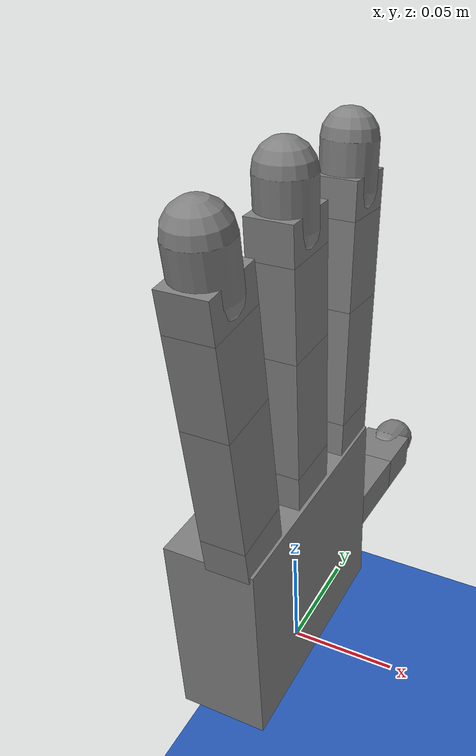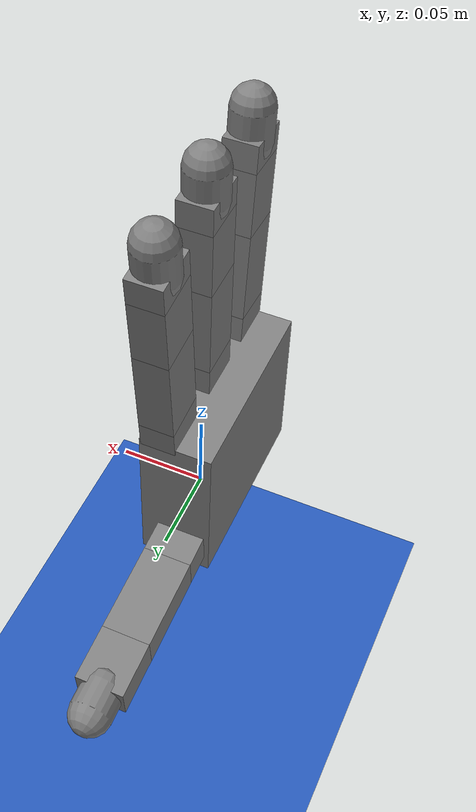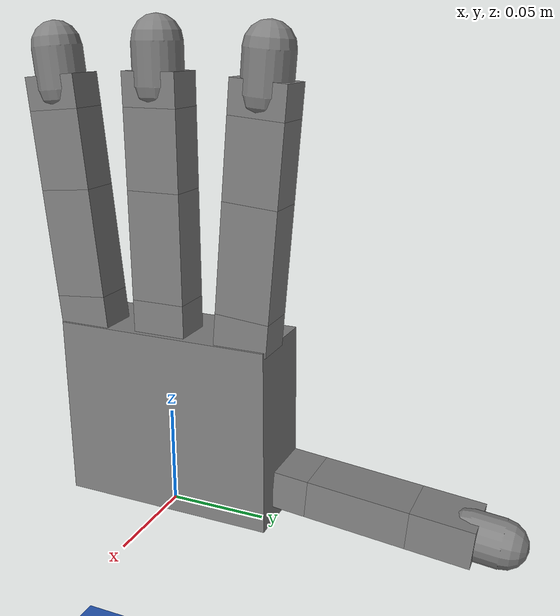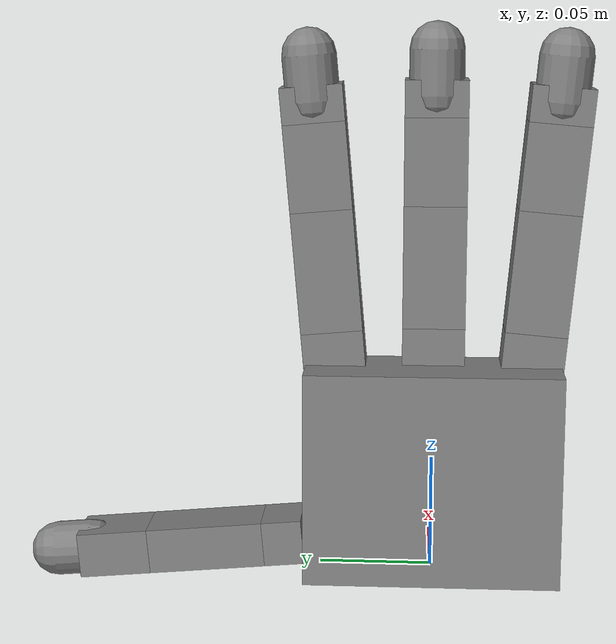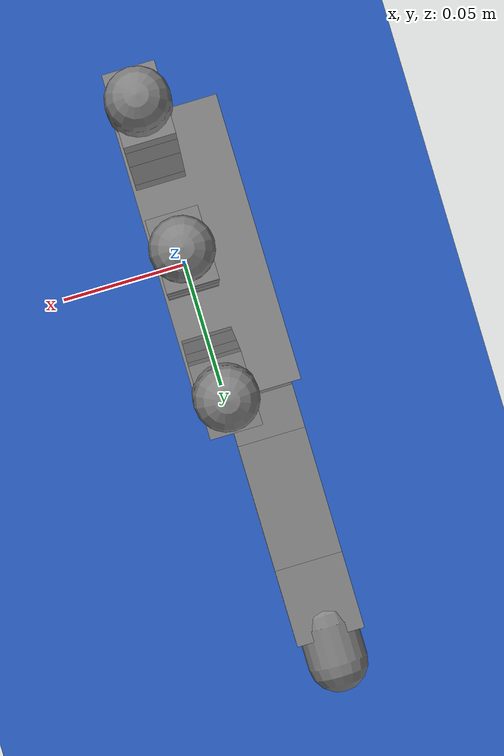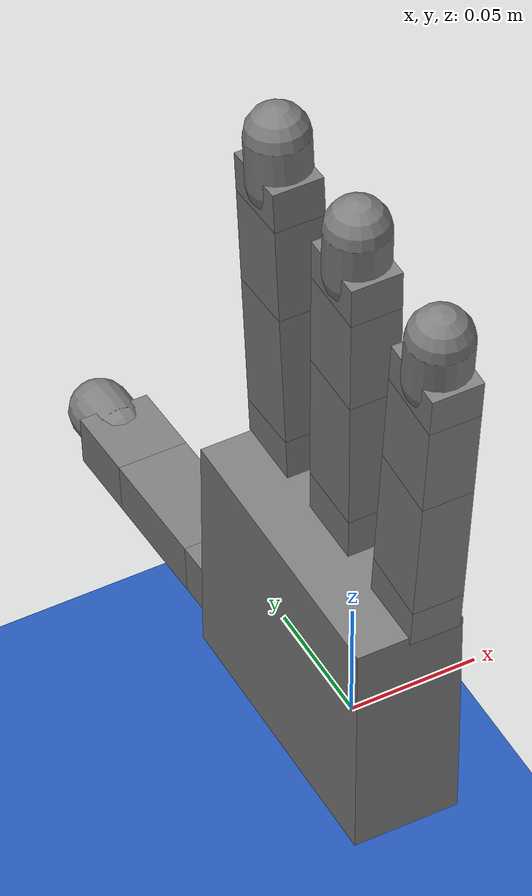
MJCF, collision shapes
<mujoco model="Allegro Custom Task">
  <include file="../common.xml"/>

  <size memory="1M"/>

  <asset>
    <mesh name="apple" file="apple.obj" />
  </asset>

  <custom>
    <text name="task_transition" data="ApplePass" />
    <numeric name="agent_planner" data="0" />
    <numeric name="agent_horizon" data="0.25" />
    <numeric name="agent_timestep" data="0.01" />
    <numeric name="agent_policy_width" data="0.0035" />
    <numeric name="sampling_spline_points" data="6" />
    <numeric name="sampling_exploration" data="0.1" />
    <numeric name="robust_xfrc" data="0.004" />
    <numeric name="gradient_spline_points" data="6" />
  </custom>

  <statistic extent="0.4" center="0.3 0.1 0"/>

  <visual>
    <quality shadowsize="8192"/>
    <global azimuth="180" elevation="-30"/>
  </visual>

  <default>
    <geom friction=".6"/>
  </default>

  <worldbody>
    <light pos="0 -0.1 0.5" dir="0 0.2 -1" diffuse="0.7 0.7 0.7" specular="0.3 0.3 0.3"
        directional="true" castshadow="true"/>
    <body name="mocap[object]" mocap="true">
        <geom type="mesh" mesh="apple" size="1 1 1" contype="0" conaffinity="0" rgba="0 1 0 1.0"/>
    </body>
    <geom name="floor" pos="0 0 -0.2" size="0 0 0.05" type="plane" material="blue_grid"/>
  </worldbody>

  <sensor>
    <user name="In Hand" dim="3" user="1 20 0 100 0.02 2"/>
    <framepos name="palm_position" objtype="site" objname="grasp_site"/>
  </sensor>

  <include file="right_hand.xml"/>

  <include file="./keyframes/apple_pass_1/apple_pass_1.xml" />

</mujoco>

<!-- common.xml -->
<mujoco>

    <visual>
        <headlight ambient=".4 .4 .4" diffuse=".8 .8 .8" specular="0.1 0.1 0.1"/>
        <map znear=".01"/>
        <quality shadowsize="2048"/>
        <global elevation="-15"/>
    </visual>

    <asset>
        <texture name="blue_grid" type="2d" builtin="checker" rgb1=".02 .14 .44" rgb2=".27 .55 1" width="300" height="300" mark="edge" markrgb="1 1 1"/>
        <material name="blue_grid" texture="blue_grid" texrepeat="1 1" texuniform="true" reflectance=".2"/>

        <texture name="grey_grid" type="2d" builtin="checker" rgb1=".26 .26 .26" rgb2=".6 .6 .6" width="300" height="300" mark="edge" markrgb="1 1 1"/>
        <material name="grey_grid" texture="grey_grid" texrepeat="1 1" texuniform="true" reflectance=".2"/>
        <texture name="skybox" type="skybox" builtin="gradient" rgb1=".66 .79 1" rgb2=".9 .91 .93" width="800" height="800"/>

        <material name="self" rgba=".7 .5 .3 1"/>
        <material name="self_default" rgba=".7 .5 .3 1"/>
        <material name="self_highlight" rgba="0 .5 .3 1"/>
        <material name="effector" rgba=".7 .4 .2 1"/>
        <material name="effector_default" rgba=".7 .4 .2 1"/>
        <material name="effector_highlight" rgba="0 .5 .3 1"/>
        <material name="decoration" rgba=".2 .6 .3 1"/>
        <material name="eye" rgba="0 .2 1 1"/>
        <material name="target" rgba=".6 .3 .3 1"/>
        <material name="target_default" rgba=".6 .3 .3 1"/>
        <material name="target_highlight" rgba=".6 .3 .3 .4"/>
        <material name="site" rgba=".5 .5 .5 .3"/>
    </asset>

    <size memory="1M"/>

    <statistic extent="0.4" center="0.3 0.1 0"/>

    <visual>
        <quality shadowsize="8192"/>
        <global azimuth="180" elevation="-30"/>
    </visual>

    <default>
        <geom friction="1.0"/>
    </default>

    <compiler angle="radian" autolimits="true"/>

    <asset>
        <mesh name="apple" file="../../shared_assets/apple/apple.obj" />
        <mesh name="apple_contact0" file="../../shared_assets/apple/contact0.stl"  />
        <mesh name="apple_contact1" file="../../shared_assets/apple/contact1.stl"  />

        <mesh name="doorknob" file="../../shared_assets/doorknob/doorknob.obj" />

        <mesh name="flashlight" file="../../shared_assets/flashlight/flashlight.obj" />
        <mesh name="flashlight_contact0" file="../../shared_assets/flashlight/contact0.stl"  />
        <mesh name="flashlight_contact1" file="../../shared_assets/flashlight/contact1.stl"  />

        <mesh name="hammer" file="../../shared_assets/hammer/hammer.obj" />
        <mesh name="hammer_contact0" file="../../shared_assets/hammer/contact0.stl"  />
        <mesh name="hammer_contact1" file="../../shared_assets/hammer/contact1.stl"  />

        <mesh name="phone" file="../../shared_assets/phone/phone.obj" />
        <mesh name="phone_contact0" file="../../shared_assets/phone/contact0.stl"  />
        <mesh name="phone_contact1" file="../../shared_assets/phone/contact1.stl"  />
        <mesh name="phone_contact2" file="../../shared_assets/phone/contact2.stl"  />

        <mesh name="stapler" file="../../shared_assets/stapler/stapler.obj" />
        <mesh name="stapler_contact0" file="../../shared_assets/stapler/contact0.stl"  />
        <mesh name="stapler_contact1" file="../../shared_assets/stapler/contact1.stl"  />
        <mesh name="stapler_contact2" file="../../shared_assets/stapler/contact2.stl"  />
        <mesh name="stapler_contact3" file="../../shared_assets/stapler/contact3.stl"  />
        <mesh name="stapler_contact4" file="../../shared_assets/stapler/contact4.stl"  />

        <mesh name="waterbottle" file="../../shared_assets/waterbottle/waterbottle.obj" />
        <mesh name="waterbottle_contact0" file="../../shared_assets/waterbottle/contact0.stl"  />
        <mesh name="waterbottle_contact1" file="../../shared_assets/waterbottle/contact1.stl"  />
    </asset>

</mujoco>

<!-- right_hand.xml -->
<mujoco model="allegro_right">

  <compiler angle="radian" meshdir="assets" autolimits="true"/>

  <default class="allegro_right">
    <joint axis="0 1 0" damping=".1"/>
    <position kp="1"/>
    <geom density="800"/>

    <default class="visual">
      <geom type="mesh" contype="0" conaffinity="0" group="2" material="black"/>
      <default class="palm_visual">
        <geom mesh="base_link"/>
      </default>
      <default class="base_visual">
        <geom mesh="link_0.0"/>
      </default>
      <default class="proximal_visual">
        <geom mesh="link_1.0"/>
      </default>
      <default class="medial_visual">
        <geom mesh="link_2.0"/>
      </default>
      <default class="distal_visual">
        <geom mesh="link_3.0"/>
      </default>
      <default class="fingertip_visual">
        <geom pos="0 0 0.0267" material="white" mesh="link_3.0_tip"/>
      </default>
      <default class="thumbtip_visual">
        <geom pos="0 0 0.0423" material="white" mesh="link_15.0_tip"/>
      </default>
    </default>

    <default class="collision">
      <geom group="3" type="box" mass="0"/>
      <default class="palm_collision">
        <geom size="0.0204 0.0565 0.0475" pos="-0.0093 0 -0.0475"/>
      </default>
      <default class="base_collision">
        <geom size="0.0098 0.01375 0.0082" pos="0 0 0.0082"/>
        <default class="thumb_base_collision">
          <geom size="0.0179 0.017 0.02275" pos="-0.0179 0.009 0.0145"/>
        </default>
      </default>
      <default class="proximal_collision">
        <geom size="0.0098 0.01375 0.027" pos="0 0 0.027"/>
        <default class="thumb_proximal_collision">
          <geom size="0.0098 0.01375 0.00885" pos="0 0 0.00885"/>
        </default>
      </default>
      <default class="medial_collision">
        <geom size="0.0098 0.01375 0.0192" pos="0 0 0.0192"/>
        <default class="thumb_medial_collision">
          <geom size="0.0098 0.01375 0.0257" pos="0 0 0.0257"/>
        </default>
      </default>
      <default class="distal_collision">
        <geom size="0.0098 0.01375 0.008" pos="0 0 0.008"/>
        <default class="thumb_distal_collision">
          <geom size="0.0098 0.01375 0.0157" pos="0 0 0.0157"/>
        </default>
      </default>
      <default class="fingertip_collision">
        <geom type="capsule" size="0.012 0.01" pos="0 0 0.019"/>
        <default class="thumbtip_collision">
          <geom type="capsule" size="0.012 0.008" pos="0 0 0.035"/>
        </default>
      </default>
    </default>

    <default class="base">
      <joint axis="0 0 1" range="-0.47 0.47"/>
      <position ctrlrange="-0.47 0.47"/>
    </default>
    <default class="proximal">
      <joint range="-0.196 1.61"/>
      <position ctrlrange="-0.196 1.61"/>
    </default>
    <default class="medial">
      <joint range="-0.174 1.709"/>
      <position ctrlrange="-0.174 1.709"/>
    </default>
    <default class="distal">
      <joint range="-0.227 1.618"/>
      <position ctrlrange="-0.227 1.618"/>
    </default>
    <default class="thumb_base">
      <joint axis="1 0 0" range="0.263 1.396"/>
      <position ctrlrange="0.263 1.396"/>
    </default>
    <default class="thumb_proximal">
      <joint axis="0 0 1" range="-0.105 1.163"/>
      <position ctrlrange="-0.105 1.163"/>
    </default>
    <default class="thumb_medial">
      <joint range="-0.189 1.644"/>
      <position ctrlrange="-0.189 1.644"/>
    </default>
    <default class="thumb_distal">
      <joint range="-0.162 1.719"/>
      <position ctrlrange="-0.162 1.719"/>
    </default>
  </default>

  <asset>
    <material name="black" rgba="0.2 0.2 0.2 1"/>
    <material name="white" rgba="0.9 0.9 0.9 1"/>

    <mesh file="base_link.stl"/>
    <mesh file="link_0.0.stl"/>
    <mesh file="link_1.0.stl"/>
    <mesh file="link_2.0.stl"/>
    <mesh file="link_3.0.stl"/>
    <mesh file="link_3.0_tip.stl"/>
    <mesh file="link_12.0_right.stl"/>
    <mesh file="link_13.0.stl"/>
    <mesh file="link_14.0.stl"/>
    <mesh file="link_15.0.stl"/>
    <mesh file="link_15.0_tip.stl"/>
  </asset>

  <worldbody>
    <body name="wrist">
      <freejoint name="root"/>
      <body name="palm" childclass="allegro_right" pos="0 0 0.09420">
        <inertial mass="0.4154" pos="0 0 0.0475" diaginertia="1e-4 1e-4 1e-4"/>
        <geom class="palm_visual" mesh="base_link"/>
        <geom class="palm_collision"/>
        <site name="grasp_site" pos="0 0 0" group="4"/>
        <!-- Thumb -->
        <body name="th_base" pos="-0.0182 0.019333 -0.045987" quat="0.477714 -0.521334 -0.521334 -0.477714">
          <joint name="thj0" class="thumb_base"/>
          <geom class="visual" mesh="link_12.0_right"/>
          <geom class="thumb_base_collision"/>
          <body name="th_proximal" pos="-0.027 0.005 0.0399">
            <joint name="thj1" class="thumb_proximal"/>
            <geom class="visual" mesh="link_13.0"/>
            <geom class="thumb_proximal_collision"/>
            <body name="th_medial" pos="0 0 0.0177">
              <joint name="thj2" class="thumb_medial"/>
              <geom class="visual" mesh="link_14.0"/>
              <geom class="thumb_medial_collision"/>
              <body name="th_distal" pos="0 0 0.0514">
                <joint name="thj3" class="thumb_distal"/>
                <geom class="visual" mesh="link_15.0"/>
                <geom class="thumb_distal_collision"/>
                <body name="th_tip">
                  <geom class="thumbtip_visual"/>
                  <geom class="thumbtip_collision"/>
                </body>
              </body>
            </body>
          </body>
        </body>
        <!-- First finger -->
        <body name="ff_base" pos="0 0.0435 -0.001542" quat="0.999048 -0.0436194 0 0">
          <joint name="ffj0" class="base"/>
          <geom class="base_visual"/>
          <geom class="base_collision"/>
          <body name="ff_proximal" pos="0 0 0.0164">
            <joint name="ffj1" class="proximal"/>
            <geom class="proximal_visual"/>
            <geom class="proximal_collision"/>
            <body name="ff_medial" pos="0 0 0.054">
              <joint name="ffj2" class="medial"/>
              <geom class="medial_visual"/>
              <geom class="medial_collision"/>
              <body name="ff_distal" pos="0 0 0.0384">
                <joint name="ffj3" class="distal"/>
                <geom class="distal_visual"/>
                <geom class="distal_collision"/>
                <body name="ff_tip">
                  <geom class="fingertip_visual"/>
                  <geom class="fingertip_collision"/>
                </body>
              </body>
            </body>
          </body>
        </body>
        <!-- Middle finger -->
        <body name="mf_base" pos="0 0 0.0007">
          <joint name="mfj0" class="base"/>
          <geom class="base_visual"/>
          <geom class="base_collision"/>
          <body name="mf_proximal" pos="0 0 0.0164">
            <joint name="mfj1" class="proximal"/>
            <geom class="proximal_visual"/>
            <geom class="proximal_collision"/>
            <body name="mf_medial" pos="0 0 0.054">
              <joint name="mfj2" class="medial"/>
              <geom class="medial_visual"/>
              <geom class="medial_collision"/>
              <body name="mf_distal" pos="0 0 0.0384">
                <joint name="mfj3" class="distal"/>
                <geom class="distal_visual"/>
                <geom class="distal_collision"/>
                <body name="mf_tip">
                  <geom class="fingertip_visual"/>
                  <geom class="fingertip_collision"/>
                </body>
              </body>
            </body>
          </body>
        </body>
        <!-- Ring finger -->
        <body name="rf_base" pos="0 -0.0435 -0.001542" quat="0.999048 0.0436194 0 0">
          <joint name="rfj0" class="base"/>
          <geom class="base_visual"/>
          <geom class="base_collision"/>
          <body name="rf_proximal" pos="0 0 0.0164">
            <joint name="rfj1" class="proximal"/>
            <geom class="proximal_visual"/>
            <geom class="proximal_collision"/>
            <body name="rf_medial" pos="0 0 0.054">
              <joint name="rfj2" class="medial"/>
              <geom class="medial_visual"/>
              <geom class="medial_collision"/>
              <body name="rf_distal" pos="0 0 0.0384">
                <joint name="rfj3" class="distal"/>
                <geom class="distal_visual"/>
                <geom class="distal_collision"/>
                <body name="rf_tip">
                  <geom class="fingertip_visual"/>
                  <geom class="fingertip_collision"/>
                </body>
              </body>
            </body>
          </body>
        </body>
      </body>
    </body>
  </worldbody>

  <contact>
    <exclude body1="palm" body2="ff_base"/>
    <exclude body1="palm" body2="mf_base"/>
    <exclude body1="palm" body2="rf_base"/>
    <exclude body1="palm" body2="th_base"/>
    <exclude body1="palm" body2="th_proximal"/>
  </contact>

  <actuator>
    <position name="ffa0" joint="ffj0" class="base"/>
    <position name="ffa1" joint="ffj1" class="proximal"/>
    <position name="ffa2" joint="ffj2" class="medial"/>
    <position name="ffa3" joint="ffj3" class="distal"/>
    <position name="mfa0" joint="mfj0" class="base"/>
    <position name="mfa1" joint="mfj1" class="proximal"/>
    <position name="mfa2" joint="mfj2" class="medial"/>
    <position name="mfa3" joint="mfj3" class="distal"/>
    <position name="rfa0" joint="rfj0" class="base"/>
    <position name="rfa1" joint="rfj1" class="proximal"/>
    <position name="rfa2" joint="rfj2" class="medial"/>
    <position name="rfa3" joint="rfj3" class="distal"/>
    <position name="tha0" joint="thj0" class="thumb_base"/>
    <position name="tha1" joint="thj1" class="thumb_proximal"/>
    <position name="tha2" joint="thj2" class="thumb_medial"/>
    <position name="tha3" joint="thj3" class="thumb_distal"/>
  </actuator>
</mujoco>

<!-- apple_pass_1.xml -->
<mujoco>
  <include file="./keyframes/apple_pass_1/apple_pass_1_hand.xml" />
  <include file="./keyframes/apple_pass_1/apple_pass_1_object.xml" />
</mujoco>
